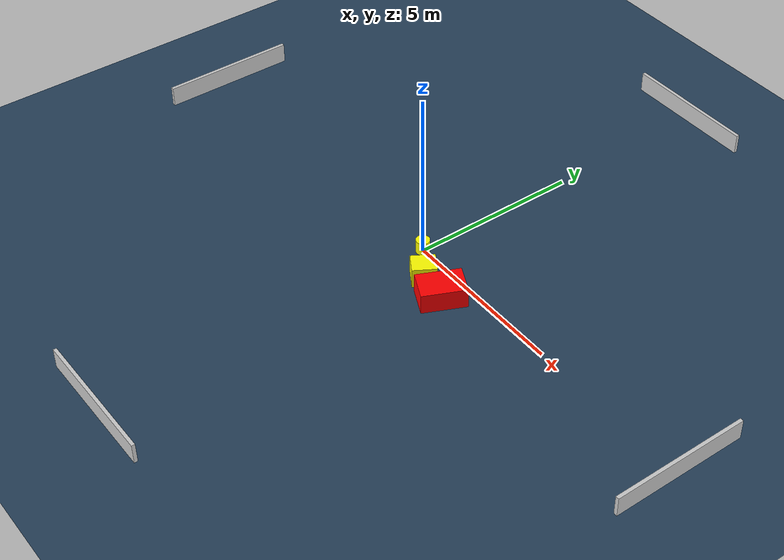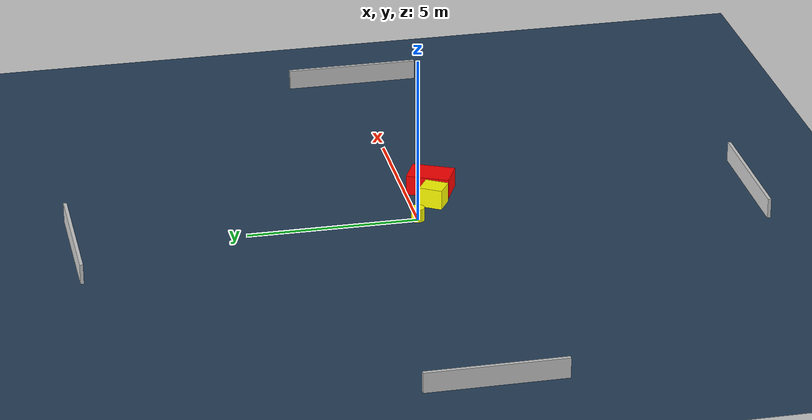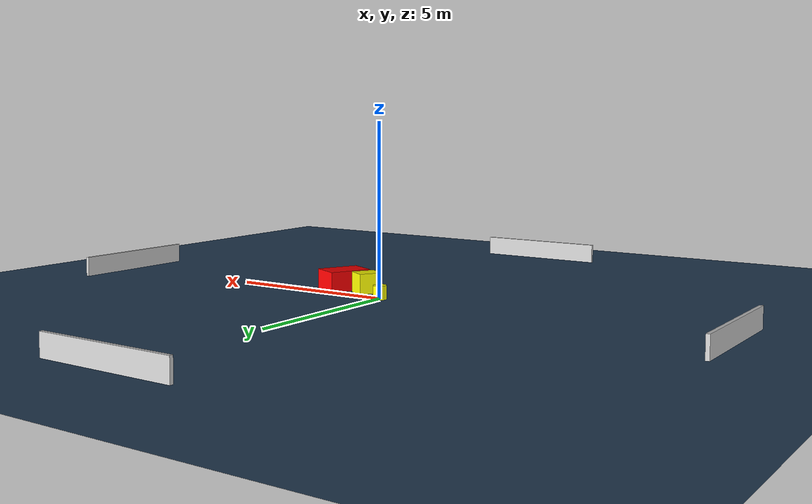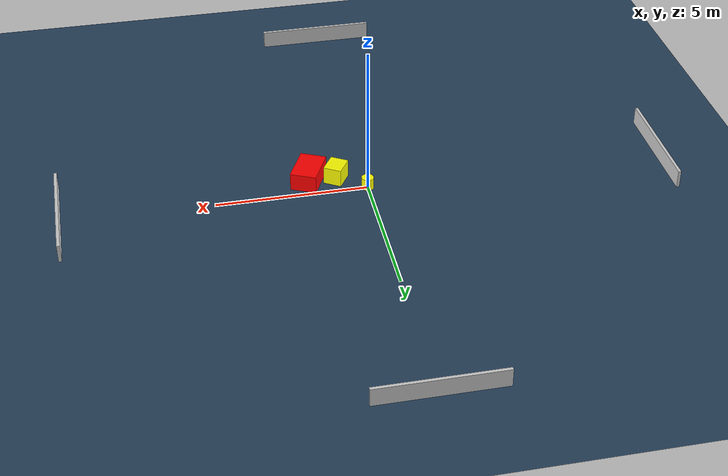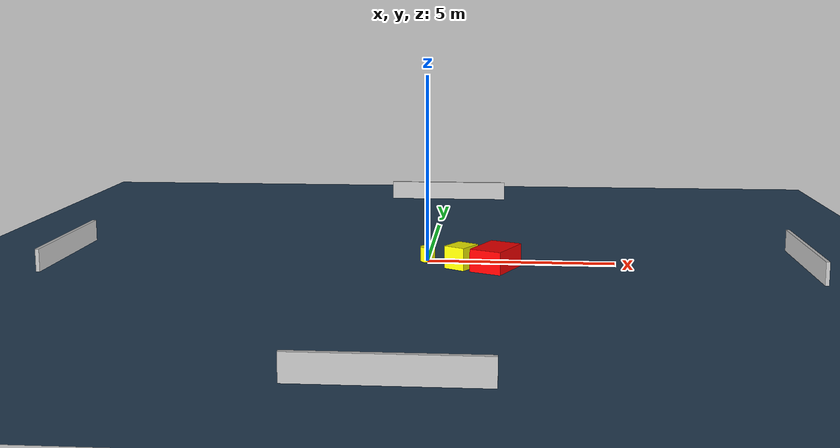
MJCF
<?xml version="1.0" ?>
<mujoco model="generated_environment">
  <option timestep="0.01" integrator="RK4" cone="elliptic"/>
  <default>
    <geom density="1"/>
  </default>
  <asset>
    <texture builtin="gradient" height="3072" name="skybox" rgb1="0.3 0.5 0.7" rgb2="0 0 0" type="skybox" width="512"/>
    <texture builtin="checker" height="300" name="groundplane" rgb1="0.2 0.3 0.4" rgb2="0.1 0.2 0.3" type="2d" width="300"/>
    <material name="groundplane" reflectance="0.2" texrepeat="5 5" texture="groundplane"/>
  </asset>
  <worldbody>
    <light dir="0 0 -1" directional="true" pos="0 0 1.5"/>
    <geom condim="3" friction="0.5 0.005 0.001" material="groundplane" name="floor" pos="0 0 0" size="0 0 0.05" type="plane"/>
    <body name="walls">
      <geom name="wall_1" condim="4" pos="-10.0 0.0 0.3" rgba="0.800000011920929 0.800000011920929 0.800000011920929 1.0" size="0.05 2.0 0.3" type="box"/>
      <geom name="wall_2" condim="4" pos="10.0 0.0 0.3" rgba="0.800000011920929 0.800000011920929 0.800000011920929 1.0" size="0.05 2.0 0.3" type="box"/>
      <geom name="wall_3" condim="4" pos="0.0 -10.0 0.3" rgba="0.800000011920929 0.800000011920929 0.800000011920929 1.0" size="2.0 0.05 0.3" type="box"/>
      <geom name="wall_4" condim="4" pos="0.0 10.0 0.3" rgba="0.800000011920929 0.800000011920929 0.800000011920929 1.0" size="2.0 0.05 0.3" type="box"/>
    </body>
    <body name="robot">
      <joint name="joint_x" type="slide" pos="0 0 0" axis="1 0 0"/>
      <joint name="joint_y" type="slide" pos="0 0 0" axis="0 1 0"/>
      <geom name="robot" type="cylinder" pos="0.0 0.0 0.2" size="0.2 0.2 0.0" mass="5.0" friction="1.0 0.005 0.0001" condim="4" rgba="1.0 1.0 0.0 1.0"/>
    </body>
    <body name="obstacle_1_movable">
      <geom name="obstacle_1_movable" condim="4" pos="0.9309719908392009 -0.6750382905393719 0.3" euler="0 0 58.49262576147258" friction="0.0 0.005 0.001" rgba="1.0 1.0 0.0 1.0" size="0.3455999972847535 0.29987858752388463 0.3" type="box" mass="0.1"/>
      <joint type="free"/>
    </body>
    <body name="obstacle_2_static">
      <geom name="obstacle_2_static" condim="4" pos="1.8363708623007453 -0.7782139846227462 0.3" euler="0 0 334.8051778613731" friction="0.0 0.005 0.001" rgba="1.0 0.0 0.0 1.0" size="0.43522924711173905 0.6407430111010242 0.3" type="box"/>
    </body>
  </worldbody>
  <actuator>
    <motor name="actuator_x" joint="joint_x" gear="1" ctrlrange="-1 1"/>
    <motor name="actuator_y" joint="joint_y" gear="1" ctrlrange="-1 1"/>
  </actuator>
</mujoco>
